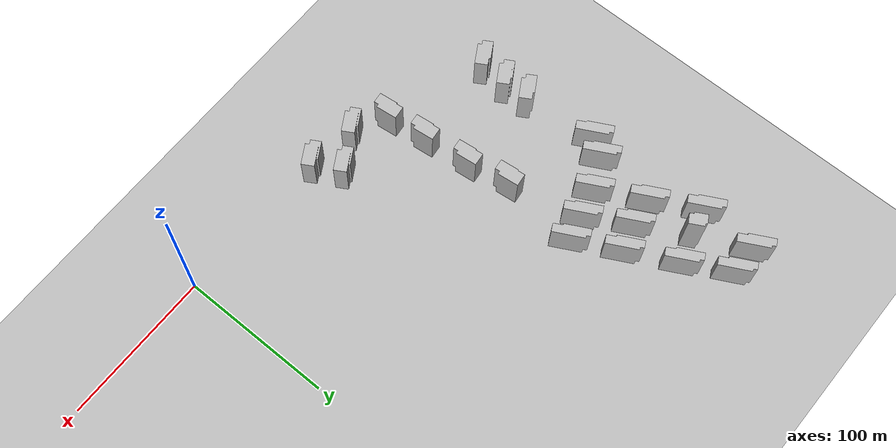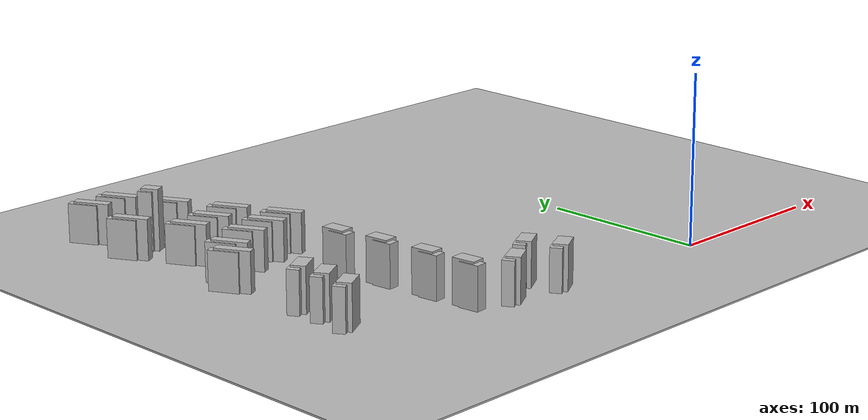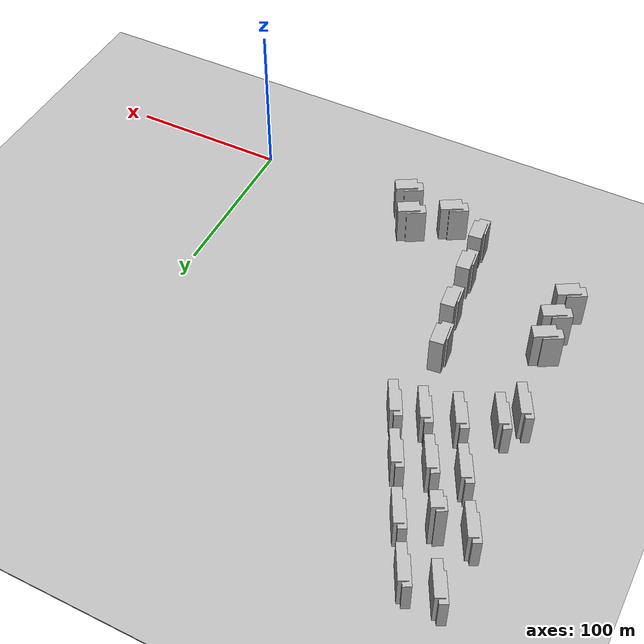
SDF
<sdf version="1.7">
 <world name="default">
  <model name="ground_plane">
   <static>1</static>
   <link name="link">
    <collision name="collision">
     <geometry><mesh><uri>model://ground_plane/scripts/plane.dae</uri><normal>0 0 1</normal></mesh></geometry>
     <surface><friction><ode><mu>100</mu><mu2>50</mu2></ode></friction></surface>
    </collision>
    <visual name="visual">
     <geometry><mesh><uri>model://ground_plane/scripts/plane.dae</uri><normal>0 0 1</normal></mesh></geometry>
     <material>
      <lighting>1</lighting>
      <script><uri>model://ground_plane/scripts/plane.jpg</uri><name>__default__</name></script>
      <shader type="pixel"/>
     </material>
    </visual>
   </link>
  </model>
  <model name="apartment2_1_clone_4">
   <static>1</static>
   <link name="link_0">
    <inertial>
     <mass>1</mass>
     <inertia>
      <ixx>0.166667</ixx>
      <ixy>0</ixy>
      <ixz>0</ixz>
      <iyy>0.166667</iyy>
      <iyz>0</iyz>
      <izz>0.166667</izz>
     </inertia>
    </inertial>
    <pose>1e-06 -0 0 0 -0 0</pose>
    <visual name="visual">
     <geometry>
      <mesh><uri>model://apartment1/scripts/apartment1.dae</uri><scale>0.35 0.14 0.22</scale></mesh>
     </geometry>
     <material>
      <lighting>1</lighting>
      <script><uri>model://apartment1/scripts/apartment1.jpg</uri><name>__default__</name></script>
      <shader type="pixel"/>
     </material>
    </visual>
    <collision name="collision">
     <geometry>
      <mesh><uri>model://apartment1/scripts/apartment1.dae</uri><scale>0.35 0.14 0.22</scale></mesh>
     </geometry>
     <surface>
      <friction>
       <ode><mu>1</mu><mu2>1</mu2><fdir1>0 0 0</fdir1><slip1>0</slip1><slip2>0</slip2></ode>
       <torsional>
        <coefficient>1</coefficient>
        <patch_radius>0</patch_radius>
        <surface_radius>0</surface_radius>
        <use_patch_radius>1</use_patch_radius>
        <ode><slip>0</slip></ode>
       </torsional>
      </friction>
      <bounce><restitution_coefficient>0</restitution_coefficient><threshold>1e+06</threshold></bounce>
      <contact>
       <collide_without_contact>0</collide_without_contact>
       <collide_without_contact_bitmask>1</collide_without_contact_bitmask>
       <collide_bitmask>1</collide_bitmask>
       <ode>
        <soft_cfm>0</soft_cfm>
        <soft_erp>0.2</soft_erp>
        <kp>1e+13</kp>
        <kd>1</kd>
        <max_vel>0.01</max_vel>
        <min_depth>0</min_depth>
       </ode>
       <bullet>
        <split_impulse>1</split_impulse>
        <split_impulse_penetration_threshold>-0.01</split_impulse_penetration_threshold>
        <soft_cfm>0</soft_cfm>
        <soft_erp>0.2</soft_erp>
        <kp>1e+13</kp>
        <kd>1</kd>
       </bullet>
      </contact>
     </surface>
    </collision>
   </link>
   <static>0</static>
   <pose>-223.775 43.3707 0 0 -0 0.527898</pose>
  </model>
  <model name="apartment2_1_clone_5">
   <static>1</static>
   <link name="link_0">
    <inertial>
     <mass>1</mass>
     <inertia>
      <ixx>0.166667</ixx>
      <ixy>0</ixy>
      <ixz>0</ixz>
      <iyy>0.166667</iyy>
      <iyz>0</iyz>
      <izz>0.166667</izz>
     </inertia>
    </inertial>
    <pose>1e-06 -0 0 0 -0 0</pose>
    <visual name="visual">
     <geometry>
      <mesh><uri>model://apartment1/scripts/apartment1.dae</uri><scale>0.35 0.14 0.22</scale></mesh>
     </geometry>
     <material>
      <lighting>1</lighting>
      <script><uri>model://apartment1/scripts/apartment1.jpg</uri><name>__default__</name></script>
      <shader type="pixel"/>
     </material>
    </visual>
    <collision name="collision">
     <geometry>
      <mesh><uri>model://apartment1/scripts/apartment1.dae</uri><scale>0.35 0.14 0.22</scale></mesh>
     </geometry>
     <surface>
      <friction>
       <ode><mu>1</mu><mu2>1</mu2><fdir1>0 0 0</fdir1><slip1>0</slip1><slip2>0</slip2></ode>
       <torsional>
        <coefficient>1</coefficient>
        <patch_radius>0</patch_radius>
        <surface_radius>0</surface_radius>
        <use_patch_radius>1</use_patch_radius>
        <ode><slip>0</slip></ode>
       </torsional>
      </friction>
      <bounce><restitution_coefficient>0</restitution_coefficient><threshold>1e+06</threshold></bounce>
      <contact>
       <collide_without_contact>0</collide_without_contact>
       <collide_without_contact_bitmask>1</collide_without_contact_bitmask>
       <collide_bitmask>1</collide_bitmask>
       <ode>
        <soft_cfm>0</soft_cfm>
        <soft_erp>0.2</soft_erp>
        <kp>1e+13</kp>
        <kd>1</kd>
        <max_vel>0.01</max_vel>
        <min_depth>0</min_depth>
       </ode>
       <bullet>
        <split_impulse>1</split_impulse>
        <split_impulse_penetration_threshold>-0.01</split_impulse_penetration_threshold>
        <soft_cfm>0</soft_cfm>
        <soft_erp>0.2</soft_erp>
        <kp>1e+13</kp>
        <kd>1</kd>
       </bullet>
      </contact>
     </surface>
    </collision>
   </link>
   <static>0</static>
   <pose>-221.711 62.3504 0 0 -0 0.527898</pose>
  </model>
  <model name="apartment2_1_clone_6">
   <static>1</static>
   <link name="link_0">
    <inertial>
     <mass>1</mass>
     <inertia>
      <ixx>0.166667</ixx>
      <ixy>0</ixy>
      <ixz>0</ixz>
      <iyy>0.166667</iyy>
      <iyz>0</iyz>
      <izz>0.166667</izz>
     </inertia>
    </inertial>
    <pose>1e-06 -0 0 0 -0 0</pose>
    <visual name="visual">
     <geometry>
      <mesh><uri>model://apartment1/scripts/apartment1.dae</uri><scale>0.35 0.14 0.22</scale></mesh>
     </geometry>
     <material>
      <lighting>1</lighting>
      <script><uri>model://apartment1/scripts/apartment1.jpg</uri><name>__default__</name></script>
      <shader type="pixel"/>
     </material>
    </visual>
    <collision name="collision">
     <geometry>
      <mesh><uri>model://apartment1/scripts/apartment1.dae</uri><scale>0.35 0.14 0.22</scale></mesh>
     </geometry>
     <surface>
      <friction>
       <ode><mu>1</mu><mu2>1</mu2><fdir1>0 0 0</fdir1><slip1>0</slip1><slip2>0</slip2></ode>
       <torsional>
        <coefficient>1</coefficient>
        <patch_radius>0</patch_radius>
        <surface_radius>0</surface_radius>
        <use_patch_radius>1</use_patch_radius>
        <ode><slip>0</slip></ode>
       </torsional>
      </friction>
      <bounce><restitution_coefficient>0</restitution_coefficient><threshold>1e+06</threshold></bounce>
      <contact>
       <collide_without_contact>0</collide_without_contact>
       <collide_without_contact_bitmask>1</collide_without_contact_bitmask>
       <collide_bitmask>1</collide_bitmask>
       <ode>
        <soft_cfm>0</soft_cfm>
        <soft_erp>0.2</soft_erp>
        <kp>1e+13</kp>
        <kd>1</kd>
        <max_vel>0.01</max_vel>
        <min_depth>0</min_depth>
       </ode>
       <bullet>
        <split_impulse>1</split_impulse>
        <split_impulse_penetration_threshold>-0.01</split_impulse_penetration_threshold>
        <soft_cfm>0</soft_cfm>
        <soft_erp>0.2</soft_erp>
        <kp>1e+13</kp>
        <kd>1</kd>
       </bullet>
      </contact>
     </surface>
    </collision>
   </link>
   <static>0</static>
   <pose>-222.402 79.3723 0 0 -0 0.527898</pose>
  </model>
  <model name="apartment2_1_clone_21">
   <static>1</static>
   <link name="link_0">
    <inertial>
     <mass>1</mass>
     <inertia>
      <ixx>0.166667</ixx>
      <ixy>0</ixy>
      <ixz>0</ixz>
      <iyy>0.166667</iyy>
      <iyz>0</iyz>
      <izz>0.166667</izz>
     </inertia>
    </inertial>
    <pose>1e-06 -0 0 0 -0 0</pose>
    <visual name="visual">
     <geometry>
      <mesh><uri>model://apartment1/scripts/apartment1.dae</uri><scale>0.35 0.14 0.22</scale></mesh>
     </geometry>
     <material>
      <lighting>1</lighting>
      <script><uri>model://apartment1/scripts/apartment1.jpg</uri><name>__default__</name></script>
      <shader type="pixel"/>
     </material>
    </visual>
    <collision name="collision">
     <geometry>
      <mesh><uri>model://apartment1/scripts/apartment1.dae</uri><scale>0.35 0.14 0.22</scale></mesh>
     </geometry>
     <surface>
      <friction>
       <ode><mu>1</mu><mu2>1</mu2><fdir1>0 0 0</fdir1><slip1>0</slip1><slip2>0</slip2></ode>
       <torsional>
        <coefficient>1</coefficient>
        <patch_radius>0</patch_radius>
        <surface_radius>0</surface_radius>
        <use_patch_radius>1</use_patch_radius>
        <ode><slip>0</slip></ode>
       </torsional>
      </friction>
      <bounce><restitution_coefficient>0</restitution_coefficient><threshold>1e+06</threshold></bounce>
      <contact>
       <collide_without_contact>0</collide_without_contact>
       <collide_without_contact_bitmask>1</collide_without_contact_bitmask>
       <collide_bitmask>1</collide_bitmask>
       <ode>
        <soft_cfm>0</soft_cfm>
        <soft_erp>0.2</soft_erp>
        <kp>1e+13</kp>
        <kd>1</kd>
        <max_vel>0.01</max_vel>
        <min_depth>0</min_depth>
       </ode>
       <bullet>
        <split_impulse>1</split_impulse>
        <split_impulse_penetration_threshold>-0.01</split_impulse_penetration_threshold>
        <soft_cfm>0</soft_cfm>
        <soft_erp>0.2</soft_erp>
        <kp>1e+13</kp>
        <kd>1</kd>
       </bullet>
      </contact>
     </surface>
    </collision>
   </link>
   <static>0</static>
   <pose>-102.425 5.46935 0 0 -0 0.527898</pose>
  </model>
  <model name="apartment2_1_clone_23">
   <static>1</static>
   <link name="link_0">
    <inertial>
     <mass>1</mass>
     <inertia>
      <ixx>0.166667</ixx>
      <ixy>0</ixy>
      <ixz>0</ixz>
      <iyy>0.166667</iyy>
      <iyz>0</iyz>
      <izz>0.166667</izz>
     </inertia>
    </inertial>
    <pose>1e-06 -0 0 0 -0 0</pose>
    <visual name="visual">
     <geometry>
      <mesh><uri>model://apartment1/scripts/apartment1.dae</uri><scale>0.35 0.14 0.22</scale></mesh>
     </geometry>
     <material>
      <lighting>1</lighting>
      <script><uri>model://apartment1/scripts/apartment1.jpg</uri><name>__default__</name></script>
      <shader type="pixel"/>
     </material>
    </visual>
    <collision name="collision">
     <geometry>
      <mesh><uri>model://apartment1/scripts/apartment1.dae</uri><scale>0.35 0.14 0.22</scale></mesh>
     </geometry>
     <surface>
      <friction>
       <ode><mu>1</mu><mu2>1</mu2><fdir1>0 0 0</fdir1><slip1>0</slip1><slip2>0</slip2></ode>
       <torsional>
        <coefficient>1</coefficient>
        <patch_radius>0</patch_radius>
        <surface_radius>0</surface_radius>
        <use_patch_radius>1</use_patch_radius>
        <ode><slip>0</slip></ode>
       </torsional>
      </friction>
      <bounce><restitution_coefficient>0</restitution_coefficient><threshold>1e+06</threshold></bounce>
      <contact>
       <collide_without_contact>0</collide_without_contact>
       <collide_without_contact_bitmask>1</collide_without_contact_bitmask>
       <collide_bitmask>1</collide_bitmask>
       <ode>
        <soft_cfm>0</soft_cfm>
        <soft_erp>0.2</soft_erp>
        <kp>1e+13</kp>
        <kd>1</kd>
        <max_vel>0.01</max_vel>
        <min_depth>0</min_depth>
       </ode>
       <bullet>
        <split_impulse>1</split_impulse>
        <split_impulse_penetration_threshold>-0.01</split_impulse_penetration_threshold>
        <soft_cfm>0</soft_cfm>
        <soft_erp>0.2</soft_erp>
        <kp>1e+13</kp>
        <kd>1</kd>
       </bullet>
      </contact>
     </surface>
    </collision>
   </link>
   <static>0</static>
   <pose>-134.997 9.67995 0 0 -0 0.527898</pose>
  </model>
  <model name="apartment2_1_clone_24">
   <static>1</static>
   <link name="link_0">
    <inertial>
     <mass>1</mass>
     <inertia>
      <ixx>0.166667</ixx>
      <ixy>0</ixy>
      <ixz>0</ixz>
      <iyy>0.166667</iyy>
      <iyz>0</iyz>
      <izz>0.166667</izz>
     </inertia>
    </inertial>
    <pose>1e-06 -0 0 0 -0 0</pose>
    <visual name="visual">
     <geometry>
      <mesh><uri>model://apartment1/scripts/apartment1.dae</uri><scale>0.35 0.14 0.22</scale></mesh>
     </geometry>
     <material>
      <lighting>1</lighting>
      <script><uri>model://apartment1/scripts/apartment1.jpg</uri><name>__default__</name></script>
      <shader type="pixel"/>
     </material>
    </visual>
    <collision name="collision">
     <geometry>
      <mesh><uri>model://apartment1/scripts/apartment1.dae</uri><scale>0.35 0.14 0.22</scale></mesh>
     </geometry>
     <surface>
      <friction>
       <ode><mu>1</mu><mu2>1</mu2><fdir1>0 0 0</fdir1><slip1>0</slip1><slip2>0</slip2></ode>
       <torsional>
        <coefficient>1</coefficient>
        <patch_radius>0</patch_radius>
        <surface_radius>0</surface_radius>
        <use_patch_radius>1</use_patch_radius>
        <ode><slip>0</slip></ode>
       </torsional>
      </friction>
      <bounce><restitution_coefficient>0</restitution_coefficient><threshold>1e+06</threshold></bounce>
      <contact>
       <collide_without_contact>0</collide_without_contact>
       <collide_without_contact_bitmask>1</collide_without_contact_bitmask>
       <collide_bitmask>1</collide_bitmask>
       <ode>
        <soft_cfm>0</soft_cfm>
        <soft_erp>0.2</soft_erp>
        <kp>1e+13</kp>
        <kd>1</kd>
        <max_vel>0.01</max_vel>
        <min_depth>0</min_depth>
       </ode>
       <bullet>
        <split_impulse>1</split_impulse>
        <split_impulse_penetration_threshold>-0.01</split_impulse_penetration_threshold>
        <soft_cfm>0</soft_cfm>
        <soft_erp>0.2</soft_erp>
        <kp>1e+13</kp>
        <kd>1</kd>
       </bullet>
      </contact>
     </surface>
    </collision>
   </link>
   <static>0</static>
   <pose>-112.023 23.1556 0 0 -0 0.527898</pose>
  </model>
  <model name="apartment2_1_clone_25">
   <static>1</static>
   <link name="link_0">
    <inertial>
     <mass>1</mass>
     <inertia>
      <ixx>0.166667</ixx>
      <ixy>0</ixy>
      <ixz>0</ixz>
      <iyy>0.166667</iyy>
      <iyz>0</iyz>
      <izz>0.166667</izz>
     </inertia>
    </inertial>
    <pose>1e-06 -0 0 0 -0 0</pose>
    <visual name="visual">
     <geometry>
      <mesh><uri>model://apartment1/scripts/apartment1.dae</uri><scale>0.35 0.14 0.22</scale></mesh>
     </geometry>
     <material>
      <lighting>1</lighting>
      <script><uri>model://apartment1/scripts/apartment1.jpg</uri><name>__default__</name></script>
      <shader type="pixel"/>
     </material>
    </visual>
    <collision name="collision">
     <geometry>
      <mesh><uri>model://apartment1/scripts/apartment1.dae</uri><scale>0.35 0.14 0.22</scale></mesh>
     </geometry>
     <surface>
      <friction>
       <ode><mu>1</mu><mu2>1</mu2><fdir1>0 0 0</fdir1><slip1>0</slip1><slip2>0</slip2></ode>
       <torsional>
        <coefficient>1</coefficient>
        <patch_radius>0</patch_radius>
        <surface_radius>0</surface_radius>
        <use_patch_radius>1</use_patch_radius>
        <ode><slip>0</slip></ode>
       </torsional>
      </friction>
      <bounce><restitution_coefficient>0</restitution_coefficient><threshold>1e+06</threshold></bounce>
      <contact>
       <collide_without_contact>0</collide_without_contact>
       <collide_without_contact_bitmask>1</collide_without_contact_bitmask>
       <collide_bitmask>1</collide_bitmask>
       <ode>
        <soft_cfm>0</soft_cfm>
        <soft_erp>0.2</soft_erp>
        <kp>1e+13</kp>
        <kd>1</kd>
        <max_vel>0.01</max_vel>
        <min_depth>0</min_depth>
       </ode>
       <bullet>
        <split_impulse>1</split_impulse>
        <split_impulse_penetration_threshold>-0.01</split_impulse_penetration_threshold>
        <soft_cfm>0</soft_cfm>
        <soft_erp>0.2</soft_erp>
        <kp>1e+13</kp>
        <kd>1</kd>
       </bullet>
      </contact>
     </surface>
    </collision>
   </link>
   <static>0</static>
   <pose>-158.226 22.2458 0 0 -0 1.68248</pose>
  </model>
  <model name="apartment2_1_clone_25_clone">
   <static>1</static>
   <link name="link_0">
    <inertial>
     <mass>1</mass>
     <inertia>
      <ixx>0.166667</ixx>
      <ixy>0</ixy>
      <ixz>0</ixz>
      <iyy>0.166667</iyy>
      <iyz>0</iyz>
      <izz>0.166667</izz>
     </inertia>
    </inertial>
    <pose>1e-06 -0 0 0 -0 0</pose>
    <visual name="visual">
     <geometry>
      <mesh><uri>model://apartment1/scripts/apartment1.dae</uri><scale>0.35 0.14 0.22</scale></mesh>
     </geometry>
     <material>
      <lighting>1</lighting>
      <script><uri>model://apartment1/scripts/apartment1.jpg</uri><name>__default__</name></script>
      <shader type="pixel"/>
     </material>
    </visual>
    <collision name="collision">
     <geometry>
      <mesh><uri>model://apartment1/scripts/apartment1.dae</uri><scale>0.35 0.14 0.22</scale></mesh>
     </geometry>
     <surface>
      <friction>
       <ode><mu>1</mu><mu2>1</mu2><fdir1>0 0 0</fdir1><slip1>0</slip1><slip2>0</slip2></ode>
       <torsional>
        <coefficient>1</coefficient>
        <patch_radius>0</patch_radius>
        <surface_radius>0</surface_radius>
        <use_patch_radius>1</use_patch_radius>
        <ode><slip>0</slip></ode>
       </torsional>
      </friction>
      <bounce><restitution_coefficient>0</restitution_coefficient><threshold>1e+06</threshold></bounce>
      <contact>
       <collide_without_contact>0</collide_without_contact>
       <collide_without_contact_bitmask>1</collide_without_contact_bitmask>
       <collide_bitmask>1</collide_bitmask>
       <ode>
        <soft_cfm>0</soft_cfm>
        <soft_erp>0.2</soft_erp>
        <kp>1e+13</kp>
        <kd>1</kd>
        <max_vel>0.01</max_vel>
        <min_depth>0</min_depth>
       </ode>
       <bullet>
        <split_impulse>1</split_impulse>
        <split_impulse_penetration_threshold>-0.01</split_impulse_penetration_threshold>
        <soft_cfm>0</soft_cfm>
        <soft_erp>0.2</soft_erp>
        <kp>1e+13</kp>
        <kd>1</kd>
       </bullet>
      </contact>
     </surface>
    </collision>
   </link>
   <static>0</static>
   <pose>-161.431 49 0 0 -0 1.68248</pose>
  </model>
  <model name="apartment2_1_clone_25_clone_0">
   <static>1</static>
   <link name="link_0">
    <inertial>
     <mass>1</mass>
     <inertia>
      <ixx>0.166667</ixx>
      <ixy>0</ixy>
      <ixz>0</ixz>
      <iyy>0.166667</iyy>
      <iyz>0</iyz>
      <izz>0.166667</izz>
     </inertia>
    </inertial>
    <pose>1e-06 -0 0 0 -0 0</pose>
    <visual name="visual">
     <geometry>
      <mesh><uri>model://apartment1/scripts/apartment1.dae</uri><scale>0.35 0.14 0.22</scale></mesh>
     </geometry>
     <material>
      <lighting>1</lighting>
      <script><uri>model://apartment1/scripts/apartment1.jpg</uri><name>__default__</name></script>
      <shader type="pixel"/>
     </material>
    </visual>
    <collision name="collision">
     <geometry>
      <mesh><uri>model://apartment1/scripts/apartment1.dae</uri><scale>0.35 0.14 0.22</scale></mesh>
     </geometry>
     <surface>
      <friction>
       <ode><mu>1</mu><mu2>1</mu2><fdir1>0 0 0</fdir1><slip1>0</slip1><slip2>0</slip2></ode>
       <torsional>
        <coefficient>1</coefficient>
        <patch_radius>0</patch_radius>
        <surface_radius>0</surface_radius>
        <use_patch_radius>1</use_patch_radius>
        <ode><slip>0</slip></ode>
       </torsional>
      </friction>
      <bounce><restitution_coefficient>0</restitution_coefficient><threshold>1e+06</threshold></bounce>
      <contact>
       <collide_without_contact>0</collide_without_contact>
       <collide_without_contact_bitmask>1</collide_without_contact_bitmask>
       <collide_bitmask>1</collide_bitmask>
       <ode>
        <soft_cfm>0</soft_cfm>
        <soft_erp>0.2</soft_erp>
        <kp>1e+13</kp>
        <kd>1</kd>
        <max_vel>0.01</max_vel>
        <min_depth>0</min_depth>
       </ode>
       <bullet>
        <split_impulse>1</split_impulse>
        <split_impulse_penetration_threshold>-0.01</split_impulse_penetration_threshold>
        <soft_cfm>0</soft_cfm>
        <soft_erp>0.2</soft_erp>
        <kp>1e+13</kp>
        <kd>1</kd>
       </bullet>
      </contact>
     </surface>
    </collision>
   </link>
   <static>0</static>
   <pose>-165 80 0 0 -0 1.68248</pose>
  </model>
  <model name="apartment2_1_clone_25_clone_1">
   <static>1</static>
   <link name="link_0">
    <inertial>
     <mass>1</mass>
     <inertia>
      <ixx>0.166667</ixx>
      <ixy>0</ixy>
      <ixz>0</ixz>
      <iyy>0.166667</iyy>
      <iyz>0</iyz>
      <izz>0.166667</izz>
     </inertia>
    </inertial>
    <pose>1e-06 -0 0 0 -0 0</pose>
    <visual name="visual">
     <geometry>
      <mesh><uri>model://apartment1/scripts/apartment1.dae</uri><scale>0.35 0.14 0.22</scale></mesh>
     </geometry>
     <material>
      <lighting>1</lighting>
      <script><uri>model://apartment1/scripts/apartment1.jpg</uri><name>__default__</name></script>
      <shader type="pixel"/>
     </material>
    </visual>
    <collision name="collision">
     <geometry>
      <mesh><uri>model://apartment1/scripts/apartment1.dae</uri><scale>0.35 0.14 0.22</scale></mesh>
     </geometry>
     <surface>
      <friction>
       <ode><mu>1</mu><mu2>1</mu2><fdir1>0 0 0</fdir1><slip1>0</slip1><slip2>0</slip2></ode>
       <torsional>
        <coefficient>1</coefficient>
        <patch_radius>0</patch_radius>
        <surface_radius>0</surface_radius>
        <use_patch_radius>1</use_patch_radius>
        <ode><slip>0</slip></ode>
       </torsional>
      </friction>
      <bounce><restitution_coefficient>0</restitution_coefficient><threshold>1e+06</threshold></bounce>
      <contact>
       <collide_without_contact>0</collide_without_contact>
       <collide_without_contact_bitmask>1</collide_without_contact_bitmask>
       <collide_bitmask>1</collide_bitmask>
       <ode>
        <soft_cfm>0</soft_cfm>
        <soft_erp>0.2</soft_erp>
        <kp>1e+13</kp>
        <kd>1</kd>
        <max_vel>0.01</max_vel>
        <min_depth>0</min_depth>
       </ode>
       <bullet>
        <split_impulse>1</split_impulse>
        <split_impulse_penetration_threshold>-0.01</split_impulse_penetration_threshold>
        <soft_cfm>0</soft_cfm>
        <soft_erp>0.2</soft_erp>
        <kp>1e+13</kp>
        <kd>1</kd>
       </bullet>
      </contact>
     </surface>
    </collision>
   </link>
   <static>0</static>
   <pose>-170.449 108.13 0 0 -0 1.68248</pose>
  </model>
  <model name="apartment3">
   <static>1</static>
   <link name="link_0">
    <inertial>
     <mass>1</mass>
     <inertia>
      <ixx>0.166667</ixx>
      <ixy>0</ixy>
      <ixz>0</ixz>
      <iyy>0.166667</iyy>
      <iyz>0</iyz>
      <izz>0.166667</izz>
     </inertia>
    </inertial>
    <pose>1e-06 -0 0 0 -0 0</pose>
    <visual name="visual">
     <geometry>
      <mesh><uri>model://apartment1/scripts/apartment1.dae</uri><scale>0.14 0.35 0.2</scale></mesh>
     </geometry>
     <material>
      <lighting>1</lighting>
      <script><uri>model://apartment1/scripts/apartment1.jpg</uri><name>__default__</name></script>
      <shader type="pixel"/>
     </material>
    </visual>
    <collision name="collision">
     <geometry>
      <mesh><uri>model://apartment1/scripts/apartment1.dae</uri><scale>0.14 0.35 0.2</scale></mesh>
     </geometry>
     <surface>
      <friction>
       <ode><mu>1</mu><mu2>1</mu2><fdir1>0 0 0</fdir1><slip1>0</slip1><slip2>0</slip2></ode>
       <torsional>
        <coefficient>1</coefficient>
        <patch_radius>0</patch_radius>
        <surface_radius>0</surface_radius>
        <use_patch_radius>1</use_patch_radius>
        <ode><slip>0</slip></ode>
       </torsional>
      </friction>
      <bounce><restitution_coefficient>0</restitution_coefficient><threshold>1e+06</threshold></bounce>
      <contact>
       <collide_without_contact>0</collide_without_contact>
       <collide_without_contact_bitmask>1</collide_without_contact_bitmask>
       <collide_bitmask>1</collide_bitmask>
       <ode>
        <soft_cfm>0</soft_cfm>
        <soft_erp>0.2</soft_erp>
        <kp>1e+13</kp>
        <kd>1</kd>
        <max_vel>0.01</max_vel>
        <min_depth>0</min_depth>
       </ode>
       <bullet>
        <split_impulse>1</split_impulse>
        <split_impulse_penetration_threshold>-0.01</split_impulse_penetration_threshold>
        <soft_cfm>0</soft_cfm>
        <soft_erp>0.2</soft_erp>
        <kp>1e+13</kp>
        <kd>1</kd>
       </bullet>
      </contact>
     </surface>
    </collision>
   </link>
   <static>0</static>
   <pose>-164.569 156.919 0 0 -0 0.481312</pose>
  </model>
  <model name="apartment3_clone">
   <static>1</static>
   <link name="link_0">
    <inertial>
     <mass>1</mass>
     <inertia>
      <ixx>0.166667</ixx>
      <ixy>0</ixy>
      <ixz>0</ixz>
      <iyy>0.166667</iyy>
      <iyz>0</iyz>
      <izz>0.166667</izz>
     </inertia>
    </inertial>
    <pose>1e-06 -0 0 0 -0 0</pose>
    <visual name="visual">
     <geometry>
      <mesh><uri>model://apartment1/scripts/apartment1.dae</uri><scale>0.14 0.35 0.2</scale></mesh>
     </geometry>
     <material>
      <lighting>1</lighting>
      <script><uri>model://apartment1/scripts/apartment1.jpg</uri><name>__default__</name></script>
      <shader type="pixel"/>
     </material>
    </visual>
    <collision name="collision">
     <geometry>
      <mesh><uri>model://apartment1/scripts/apartment1.dae</uri><scale>0.14 0.35 0.2</scale></mesh>
     </geometry>
     <surface>
      <friction>
       <ode><mu>1</mu><mu2>1</mu2><fdir1>0 0 0</fdir1><slip1>0</slip1><slip2>0</slip2></ode>
       <torsional>
        <coefficient>1</coefficient>
        <patch_radius>0</patch_radius>
        <surface_radius>0</surface_radius>
        <use_patch_radius>1</use_patch_radius>
        <ode><slip>0</slip></ode>
       </torsional>
      </friction>
      <bounce><restitution_coefficient>0</restitution_coefficient><threshold>1e+06</threshold></bounce>
      <contact>
       <collide_without_contact>0</collide_without_contact>
       <collide_without_contact_bitmask>1</collide_without_contact_bitmask>
       <collide_bitmask>1</collide_bitmask>
       <ode>
        <soft_cfm>0</soft_cfm>
        <soft_erp>0.2</soft_erp>
        <kp>1e+13</kp>
        <kd>1</kd>
        <max_vel>0.01</max_vel>
        <min_depth>0</min_depth>
       </ode>
       <bullet>
        <split_impulse>1</split_impulse>
        <split_impulse_penetration_threshold>-0.01</split_impulse_penetration_threshold>
        <soft_cfm>0</soft_cfm>
        <soft_erp>0.2</soft_erp>
        <kp>1e+13</kp>
        <kd>1</kd>
       </bullet>
      </contact>
     </surface>
    </collision>
   </link>
   <static>0</static>
   <pose>-178.982 186.017 0 0 -0 0.481312</pose>
  </model>
  <model name="apartment3_clone_0">
   <static>1</static>
   <link name="link_0">
    <inertial>
     <mass>1</mass>
     <inertia>
      <ixx>0.166667</ixx>
      <ixy>0</ixy>
      <ixz>0</ixz>
      <iyy>0.166667</iyy>
      <iyz>0</iyz>
      <izz>0.166667</izz>
     </inertia>
    </inertial>
    <pose>1e-06 -0 0 0 -0 0</pose>
    <visual name="visual">
     <geometry>
      <mesh><uri>model://apartment1/scripts/apartment1.dae</uri><scale>0.14 0.35 0.2</scale></mesh>
     </geometry>
     <material>
      <lighting>1</lighting>
      <script><uri>model://apartment1/scripts/apartment1.jpg</uri><name>__default__</name></script>
      <shader type="pixel"/>
     </material>
    </visual>
    <collision name="collision">
     <geometry>
      <mesh><uri>model://apartment1/scripts/apartment1.dae</uri><scale>0.14 0.35 0.2</scale></mesh>
     </geometry>
     <surface>
      <friction>
       <ode><mu>1</mu><mu2>1</mu2><fdir1>0 0 0</fdir1><slip1>0</slip1><slip2>0</slip2></ode>
       <torsional>
        <coefficient>1</coefficient>
        <patch_radius>0</patch_radius>
        <surface_radius>0</surface_radius>
        <use_patch_radius>1</use_patch_radius>
        <ode><slip>0</slip></ode>
       </torsional>
      </friction>
      <bounce><restitution_coefficient>0</restitution_coefficient><threshold>1e+06</threshold></bounce>
      <contact>
       <collide_without_contact>0</collide_without_contact>
       <collide_without_contact_bitmask>1</collide_without_contact_bitmask>
       <collide_bitmask>1</collide_bitmask>
       <ode>
        <soft_cfm>0</soft_cfm>
        <soft_erp>0.2</soft_erp>
        <kp>1e+13</kp>
        <kd>1</kd>
        <max_vel>0.01</max_vel>
        <min_depth>0</min_depth>
       </ode>
       <bullet>
        <split_impulse>1</split_impulse>
        <split_impulse_penetration_threshold>-0.01</split_impulse_penetration_threshold>
        <soft_cfm>0</soft_cfm>
        <soft_erp>0.2</soft_erp>
        <kp>1e+13</kp>
        <kd>1</kd>
       </bullet>
      </contact>
     </surface>
    </collision>
   </link>
   <static>0</static>
   <pose>-195.248 218.051 0 0 -0 0.481312</pose>
  </model>
  <model name="apartment3_clone_1">
   <static>1</static>
   <link name="link_0">
    <inertial>
     <mass>1</mass>
     <inertia>
      <ixx>0.166667</ixx>
      <ixy>0</ixy>
      <ixz>0</ixz>
      <iyy>0.166667</iyy>
      <iyz>0</iyz>
      <izz>0.166667</izz>
     </inertia>
    </inertial>
    <pose>1e-06 -0 0 0 -0 0</pose>
    <visual name="visual">
     <geometry>
      <mesh><uri>model://apartment1/scripts/apartment1.dae</uri><scale>0.14 0.35 0.2</scale></mesh>
     </geometry>
     <material>
      <lighting>1</lighting>
      <script><uri>model://apartment1/scripts/apartment1.jpg</uri><name>__default__</name></script>
      <shader type="pixel"/>
     </material>
    </visual>
    <collision name="collision">
     <geometry>
      <mesh><uri>model://apartment1/scripts/apartment1.dae</uri><scale>0.14 0.35 0.2</scale></mesh>
     </geometry>
     <surface>
      <friction>
       <ode><mu>1</mu><mu2>1</mu2><fdir1>0 0 0</fdir1><slip1>0</slip1><slip2>0</slip2></ode>
       <torsional>
        <coefficient>1</coefficient>
        <patch_radius>0</patch_radius>
        <surface_radius>0</surface_radius>
        <use_patch_radius>1</use_patch_radius>
        <ode><slip>0</slip></ode>
       </torsional>
      </friction>
      <bounce><restitution_coefficient>0</restitution_coefficient><threshold>1e+06</threshold></bounce>
      <contact>
       <collide_without_contact>0</collide_without_contact>
       <collide_without_contact_bitmask>1</collide_without_contact_bitmask>
       <collide_bitmask>1</collide_bitmask>
       <ode>
        <soft_cfm>0</soft_cfm>
        <soft_erp>0.2</soft_erp>
        <kp>1e+13</kp>
        <kd>1</kd>
        <max_vel>0.01</max_vel>
        <min_depth>0</min_depth>
       </ode>
       <bullet>
        <split_impulse>1</split_impulse>
        <split_impulse_penetration_threshold>-0.01</split_impulse_penetration_threshold>
        <soft_cfm>0</soft_cfm>
        <soft_erp>0.2</soft_erp>
        <kp>1e+13</kp>
        <kd>1</kd>
       </bullet>
      </contact>
     </surface>
    </collision>
   </link>
   <static>0</static>
   <pose>-210.536 245.674 0 0 -0 0.481312</pose>
  </model>
  <model name="apartment3_clone_2">
   <static>1</static>
   <link name="link_0">
    <inertial>
     <mass>1</mass>
     <inertia>
      <ixx>0.166667</ixx>
      <ixy>0</ixy>
      <ixz>0</ixz>
      <iyy>0.166667</iyy>
      <iyz>0</iyz>
      <izz>0.166667</izz>
     </inertia>
    </inertial>
    <pose>1e-06 -0 0 0 -0 0</pose>
    <visual name="visual">
     <geometry>
      <mesh><uri>model://apartment1/scripts/apartment1.dae</uri><scale>0.14 0.35 0.2</scale></mesh>
     </geometry>
     <material>
      <lighting>1</lighting>
      <script><uri>model://apartment1/scripts/apartment1.jpg</uri><name>__default__</name></script>
      <shader type="pixel"/>
     </material>
    </visual>
    <collision name="collision">
     <geometry>
      <mesh><uri>model://apartment1/scripts/apartment1.dae</uri><scale>0.14 0.35 0.2</scale></mesh>
     </geometry>
     <surface>
      <friction>
       <ode><mu>1</mu><mu2>1</mu2><fdir1>0 0 0</fdir1><slip1>0</slip1><slip2>0</slip2></ode>
       <torsional>
        <coefficient>1</coefficient>
        <patch_radius>0</patch_radius>
        <surface_radius>0</surface_radius>
        <use_patch_radius>1</use_patch_radius>
        <ode><slip>0</slip></ode>
       </torsional>
      </friction>
      <bounce><restitution_coefficient>0</restitution_coefficient><threshold>1e+06</threshold></bounce>
      <contact>
       <collide_without_contact>0</collide_without_contact>
       <collide_without_contact_bitmask>1</collide_without_contact_bitmask>
       <collide_bitmask>1</collide_bitmask>
       <ode>
        <soft_cfm>0</soft_cfm>
        <soft_erp>0.2</soft_erp>
        <kp>1e+13</kp>
        <kd>1</kd>
        <max_vel>0.01</max_vel>
        <min_depth>0</min_depth>
       </ode>
       <bullet>
        <split_impulse>1</split_impulse>
        <split_impulse_penetration_threshold>-0.01</split_impulse_penetration_threshold>
        <soft_cfm>0</soft_cfm>
        <soft_erp>0.2</soft_erp>
        <kp>1e+13</kp>
        <kd>1</kd>
       </bullet>
      </contact>
     </surface>
    </collision>
   </link>
   <static>0</static>
   <pose>-181.013 153.39 0 0 -0 0.481312</pose>
  </model>
  <model name="apartment3_clone_3">
   <static>1</static>
   <link name="link_0">
    <inertial>
     <mass>1</mass>
     <inertia>
      <ixx>0.166667</ixx>
      <ixy>0</ixy>
      <ixz>0</ixz>
      <iyy>0.166667</iyy>
      <iyz>0</iyz>
      <izz>0.166667</izz>
     </inertia>
    </inertial>
    <pose>1e-06 -0 0 0 -0 0</pose>
    <visual name="visual">
     <geometry>
      <mesh><uri>model://apartment1/scripts/apartment1.dae</uri><scale>0.14 0.35 0.2</scale></mesh>
     </geometry>
     <material>
      <lighting>1</lighting>
      <script><uri>model://apartment1/scripts/apartment1.jpg</uri><name>__default__</name></script>
      <shader type="pixel"/>
     </material>
    </visual>
    <collision name="collision">
     <geometry>
      <mesh><uri>model://apartment1/scripts/apartment1.dae</uri><scale>0.14 0.35 0.2</scale></mesh>
     </geometry>
     <surface>
      <friction>
       <ode><mu>1</mu><mu2>1</mu2><fdir1>0 0 0</fdir1><slip1>0</slip1><slip2>0</slip2></ode>
       <torsional>
        <coefficient>1</coefficient>
        <patch_radius>0</patch_radius>
        <surface_radius>0</surface_radius>
        <use_patch_radius>1</use_patch_radius>
        <ode><slip>0</slip></ode>
       </torsional>
      </friction>
      <bounce><restitution_coefficient>0</restitution_coefficient><threshold>1e+06</threshold></bounce>
      <contact>
       <collide_without_contact>0</collide_without_contact>
       <collide_without_contact_bitmask>1</collide_without_contact_bitmask>
       <collide_bitmask>1</collide_bitmask>
       <ode>
        <soft_cfm>0</soft_cfm>
        <soft_erp>0.2</soft_erp>
        <kp>1e+13</kp>
        <kd>1</kd>
        <max_vel>0.01</max_vel>
        <min_depth>0</min_depth>
       </ode>
       <bullet>
        <split_impulse>1</split_impulse>
        <split_impulse_penetration_threshold>-0.01</split_impulse_penetration_threshold>
        <soft_cfm>0</soft_cfm>
        <soft_erp>0.2</soft_erp>
        <kp>1e+13</kp>
        <kd>1</kd>
       </bullet>
      </contact>
     </surface>
    </collision>
   </link>
   <static>0</static>
   <pose>-196.866 180.955 0 0 -0 0.481312</pose>
  </model>
  <model name="apartment3_clone_5">
   <static>1</static>
   <link name="link_0">
    <inertial>
     <mass>1</mass>
     <inertia>
      <ixx>0.166667</ixx>
      <ixy>0</ixy>
      <ixz>0</ixz>
      <iyy>0.166667</iyy>
      <iyz>0</iyz>
      <izz>0.166667</izz>
     </inertia>
    </inertial>
    <pose>1e-06 -0 0 0 -0 0</pose>
    <visual name="visual">
     <geometry>
      <mesh><uri>model://apartment1/scripts/apartment1.dae</uri><scale>0.14 0.35 0.2</scale></mesh>
     </geometry>
     <material>
      <lighting>1</lighting>
      <script><uri>model://apartment1/scripts/apartment1.jpg</uri><name>__default__</name></script>
      <shader type="pixel"/>
     </material>
    </visual>
    <collision name="collision">
     <geometry>
      <mesh><uri>model://apartment1/scripts/apartment1.dae</uri><scale>0.14 0.35 0.2</scale></mesh>
     </geometry>
     <surface>
      <friction>
       <ode><mu>1</mu><mu2>1</mu2><fdir1>0 0 0</fdir1><slip1>0</slip1><slip2>0</slip2></ode>
       <torsional>
        <coefficient>1</coefficient>
        <patch_radius>0</patch_radius>
        <surface_radius>0</surface_radius>
        <use_patch_radius>1</use_patch_radius>
        <ode><slip>0</slip></ode>
       </torsional>
      </friction>
      <bounce><restitution_coefficient>0</restitution_coefficient><threshold>1e+06</threshold></bounce>
      <contact>
       <collide_without_contact>0</collide_without_contact>
       <collide_without_contact_bitmask>1</collide_without_contact_bitmask>
       <collide_bitmask>1</collide_bitmask>
       <ode>
        <soft_cfm>0</soft_cfm>
        <soft_erp>0.2</soft_erp>
        <kp>1e+13</kp>
        <kd>1</kd>
        <max_vel>0.01</max_vel>
        <min_depth>0</min_depth>
       </ode>
       <bullet>
        <split_impulse>1</split_impulse>
        <split_impulse_penetration_threshold>-0.01</split_impulse_penetration_threshold>
        <soft_cfm>0</soft_cfm>
        <soft_erp>0.2</soft_erp>
        <kp>1e+13</kp>
        <kd>1</kd>
       </bullet>
      </contact>
     </surface>
    </collision>
   </link>
   <static>0</static>
   <pose>-229.941 245.912 0 0 -0 0.481312</pose>
  </model>
  <model name="apartment3_clone_6">
   <static>1</static>
   <link name="link_0">
    <inertial>
     <mass>1</mass>
     <inertia>
      <ixx>0.166667</ixx>
      <ixy>0</ixy>
      <ixz>0</ixz>
      <iyy>0.166667</iyy>
      <iyz>0</iyz>
      <izz>0.166667</izz>
     </inertia>
    </inertial>
    <pose>1e-06 -0 0 0 -0 0</pose>
    <visual name="visual">
     <geometry>
      <mesh><uri>model://apartment1/scripts/apartment1.dae</uri><scale>0.14 0.35 0.2</scale></mesh>
     </geometry>
     <material>
      <lighting>1</lighting>
      <script><uri>model://apartment1/scripts/apartment1.jpg</uri><name>__default__</name></script>
      <shader type="pixel"/>
     </material>
    </visual>
    <collision name="collision">
     <geometry>
      <mesh><uri>model://apartment1/scripts/apartment1.dae</uri><scale>0.14 0.35 0.2</scale></mesh>
     </geometry>
     <surface>
      <friction>
       <ode><mu>1</mu><mu2>1</mu2><fdir1>0 0 0</fdir1><slip1>0</slip1><slip2>0</slip2></ode>
       <torsional>
        <coefficient>1</coefficient>
        <patch_radius>0</patch_radius>
        <surface_radius>0</surface_radius>
        <use_patch_radius>1</use_patch_radius>
        <ode><slip>0</slip></ode>
       </torsional>
      </friction>
      <bounce><restitution_coefficient>0</restitution_coefficient><threshold>1e+06</threshold></bounce>
      <contact>
       <collide_without_contact>0</collide_without_contact>
       <collide_without_contact_bitmask>1</collide_without_contact_bitmask>
       <collide_bitmask>1</collide_bitmask>
       <ode>
        <soft_cfm>0</soft_cfm>
        <soft_erp>0.2</soft_erp>
        <kp>1e+13</kp>
        <kd>1</kd>
        <max_vel>0.01</max_vel>
        <min_depth>0</min_depth>
       </ode>
       <bullet>
        <split_impulse>1</split_impulse>
        <split_impulse_penetration_threshold>-0.01</split_impulse_penetration_threshold>
        <soft_cfm>0</soft_cfm>
        <soft_erp>0.2</soft_erp>
        <kp>1e+13</kp>
        <kd>1</kd>
       </bullet>
      </contact>
     </surface>
    </collision>
   </link>
   <static>0</static>
   <pose>-199.671 148.329 0 0 -0 0.481312</pose>
  </model>
  <model name="apartment3_clone_7">
   <static>1</static>
   <link name="link_0">
    <inertial>
     <mass>1</mass>
     <inertia>
      <ixx>0.166667</ixx>
      <ixy>0</ixy>
      <ixz>0</ixz>
      <iyy>0.166667</iyy>
      <iyz>0</iyz>
      <izz>0.166667</izz>
     </inertia>
    </inertial>
    <pose>1e-06 -0 0 0 -0 0</pose>
    <visual name="visual">
     <geometry>
      <mesh><uri>model://apartment1/scripts/apartment1.dae</uri><scale>0.14 0.35 0.2</scale></mesh>
     </geometry>
     <material>
      <lighting>1</lighting>
      <script><uri>model://apartment1/scripts/apartment1.jpg</uri><name>__default__</name></script>
      <shader type="pixel"/>
     </material>
    </visual>
    <collision name="collision">
     <geometry>
      <mesh><uri>model://apartment1/scripts/apartment1.dae</uri><scale>0.14 0.35 0.2</scale></mesh>
     </geometry>
     <surface>
      <friction>
       <ode><mu>1</mu><mu2>1</mu2><fdir1>0 0 0</fdir1><slip1>0</slip1><slip2>0</slip2></ode>
       <torsional>
        <coefficient>1</coefficient>
        <patch_radius>0</patch_radius>
        <surface_radius>0</surface_radius>
        <use_patch_radius>1</use_patch_radius>
        <ode><slip>0</slip></ode>
       </torsional>
      </friction>
      <bounce><restitution_coefficient>0</restitution_coefficient><threshold>1e+06</threshold></bounce>
      <contact>
       <collide_without_contact>0</collide_without_contact>
       <collide_without_contact_bitmask>1</collide_without_contact_bitmask>
       <collide_bitmask>1</collide_bitmask>
       <ode>
        <soft_cfm>0</soft_cfm>
        <soft_erp>0.2</soft_erp>
        <kp>1e+13</kp>
        <kd>1</kd>
        <max_vel>0.01</max_vel>
        <min_depth>0</min_depth>
       </ode>
       <bullet>
        <split_impulse>1</split_impulse>
        <split_impulse_penetration_threshold>-0.01</split_impulse_penetration_threshold>
        <soft_cfm>0</soft_cfm>
        <soft_erp>0.2</soft_erp>
        <kp>1e+13</kp>
        <kd>1</kd>
       </bullet>
      </contact>
     </surface>
    </collision>
   </link>
   <static>0</static>
   <pose>-215.155 178.269 0 0 -0 0.481312</pose>
  </model>
  <model name="apartment3_clone_8">
   <static>1</static>
   <link name="link_0">
    <inertial>
     <mass>1</mass>
     <inertia>
      <ixx>0.166667</ixx>
      <ixy>0</ixy>
      <ixz>0</ixz>
      <iyy>0.166667</iyy>
      <iyz>0</iyz>
      <izz>0.166667</izz>
     </inertia>
    </inertial>
    <pose>1e-06 -0 0 0 -0 0</pose>
    <visual name="visual">
     <geometry>
      <mesh><uri>model://apartment1/scripts/apartment1.dae</uri><scale>0.14 0.35 0.2</scale></mesh>
     </geometry>
     <material>
      <lighting>1</lighting>
      <script><uri>model://apartment1/scripts/apartment1.jpg</uri><name>__default__</name></script>
      <shader type="pixel"/>
     </material>
    </visual>
    <collision name="collision">
     <geometry>
      <mesh><uri>model://apartment1/scripts/apartment1.dae</uri><scale>0.14 0.35 0.2</scale></mesh>
     </geometry>
     <surface>
      <friction>
       <ode><mu>1</mu><mu2>1</mu2><fdir1>0 0 0</fdir1><slip1>0</slip1><slip2>0</slip2></ode>
       <torsional>
        <coefficient>1</coefficient>
        <patch_radius>0</patch_radius>
        <surface_radius>0</surface_radius>
        <use_patch_radius>1</use_patch_radius>
        <ode><slip>0</slip></ode>
       </torsional>
      </friction>
      <bounce><restitution_coefficient>0</restitution_coefficient><threshold>1e+06</threshold></bounce>
      <contact>
       <collide_without_contact>0</collide_without_contact>
       <collide_without_contact_bitmask>1</collide_without_contact_bitmask>
       <collide_bitmask>1</collide_bitmask>
       <ode>
        <soft_cfm>0</soft_cfm>
        <soft_erp>0.2</soft_erp>
        <kp>1e+13</kp>
        <kd>1</kd>
        <max_vel>0.01</max_vel>
        <min_depth>0</min_depth>
       </ode>
       <bullet>
        <split_impulse>1</split_impulse>
        <split_impulse_penetration_threshold>-0.01</split_impulse_penetration_threshold>
        <soft_cfm>0</soft_cfm>
        <soft_erp>0.2</soft_erp>
        <kp>1e+13</kp>
        <kd>1</kd>
       </bullet>
      </contact>
     </surface>
    </collision>
   </link>
   <static>0</static>
   <pose>-231.734 208.608 0 0 -0 0.481312</pose>
  </model>
  <model name="apartment3_clone_9">
   <static>1</static>
   <link name="link_0">
    <inertial>
     <mass>1</mass>
     <inertia>
      <ixx>0.166667</ixx>
      <ixy>0</ixy>
      <ixz>0</ixz>
      <iyy>0.166667</iyy>
      <iyz>0</iyz>
      <izz>0.166667</izz>
     </inertia>
    </inertial>
    <pose>1e-06 -0 0 0 -0 0</pose>
    <visual name="visual">
     <geometry>
      <mesh><uri>model://apartment1/scripts/apartment1.dae</uri><scale>0.14 0.35 0.2</scale></mesh>
     </geometry>
     <material>
      <lighting>1</lighting>
      <script><uri>model://apartment1/scripts/apartment1.jpg</uri><name>__default__</name></script>
      <shader type="pixel"/>
     </material>
    </visual>
    <collision name="collision">
     <geometry>
      <mesh><uri>model://apartment1/scripts/apartment1.dae</uri><scale>0.14 0.35 0.2</scale></mesh>
     </geometry>
     <surface>
      <friction>
       <ode><mu>1</mu><mu2>1</mu2><fdir1>0 0 0</fdir1><slip1>0</slip1><slip2>0</slip2></ode>
       <torsional>
        <coefficient>1</coefficient>
        <patch_radius>0</patch_radius>
        <surface_radius>0</surface_radius>
        <use_patch_radius>1</use_patch_radius>
        <ode><slip>0</slip></ode>
       </torsional>
      </friction>
      <bounce><restitution_coefficient>0</restitution_coefficient><threshold>1e+06</threshold></bounce>
      <contact>
       <collide_without_contact>0</collide_without_contact>
       <collide_without_contact_bitmask>1</collide_without_contact_bitmask>
       <collide_bitmask>1</collide_bitmask>
       <ode>
        <soft_cfm>0</soft_cfm>
        <soft_erp>0.2</soft_erp>
        <kp>1e+13</kp>
        <kd>1</kd>
        <max_vel>0.01</max_vel>
        <min_depth>0</min_depth>
       </ode>
       <bullet>
        <split_impulse>1</split_impulse>
        <split_impulse_penetration_threshold>-0.01</split_impulse_penetration_threshold>
        <soft_cfm>0</soft_cfm>
        <soft_erp>0.2</soft_erp>
        <kp>1e+13</kp>
        <kd>1</kd>
       </bullet>
      </contact>
     </surface>
    </collision>
   </link>
   <static>0</static>
   <pose>-220.146 138.384 0 0 -0 0.481312</pose>
  </model>
  <model name="apartment3_clone_10">
   <static>1</static>
   <link name="link_0">
    <inertial>
     <mass>1</mass>
     <inertia>
      <ixx>0.166667</ixx>
      <ixy>0</ixy>
      <ixz>0</ixz>
      <iyy>0.166667</iyy>
      <iyz>0</iyz>
      <izz>0.166667</izz>
     </inertia>
    </inertial>
    <pose>1e-06 -0 0 0 -0 0</pose>
    <visual name="visual">
     <geometry>
      <mesh><uri>model://apartment1/scripts/apartment1.dae</uri><scale>0.14 0.35 0.2</scale></mesh>
     </geometry>
     <material>
      <lighting>1</lighting>
      <script><uri>model://apartment1/scripts/apartment1.jpg</uri><name>__default__</name></script>
      <shader type="pixel"/>
     </material>
    </visual>
    <collision name="collision">
     <geometry>
      <mesh><uri>model://apartment1/scripts/apartment1.dae</uri><scale>0.14 0.35 0.2</scale></mesh>
     </geometry>
     <surface>
      <friction>
       <ode><mu>1</mu><mu2>1</mu2><fdir1>0 0 0</fdir1><slip1>0</slip1><slip2>0</slip2></ode>
       <torsional>
        <coefficient>1</coefficient>
        <patch_radius>0</patch_radius>
        <surface_radius>0</surface_radius>
        <use_patch_radius>1</use_patch_radius>
        <ode><slip>0</slip></ode>
       </torsional>
      </friction>
      <bounce><restitution_coefficient>0</restitution_coefficient><threshold>1e+06</threshold></bounce>
      <contact>
       <collide_without_contact>0</collide_without_contact>
       <collide_without_contact_bitmask>1</collide_without_contact_bitmask>
       <collide_bitmask>1</collide_bitmask>
       <ode>
        <soft_cfm>0</soft_cfm>
        <soft_erp>0.2</soft_erp>
        <kp>1e+13</kp>
        <kd>1</kd>
        <max_vel>0.01</max_vel>
        <min_depth>0</min_depth>
       </ode>
       <bullet>
        <split_impulse>1</split_impulse>
        <split_impulse_penetration_threshold>-0.01</split_impulse_penetration_threshold>
        <soft_cfm>0</soft_cfm>
        <soft_erp>0.2</soft_erp>
        <kp>1e+13</kp>
        <kd>1</kd>
       </bullet>
      </contact>
     </surface>
    </collision>
   </link>
   <static>0</static>
   <pose>-228.245 126.599 0 0 -0 0.481312</pose>
  </model>
  <model name="tower_7">
   <static>1</static>
   <link name="link_0">
    <inertial>
     <mass>1</mass>
     <inertia>
      <ixx>0.166667</ixx>
      <ixy>0</ixy>
      <ixz>0</ixz>
      <iyy>0.166667</iyy>
      <iyz>0</iyz>
      <izz>0.166667</izz>
     </inertia>
    </inertial>
    <pose>1e-06 -0 0 0 -0 0</pose>
    <visual name="visual">
     <geometry><mesh><uri>model://tower/scripts/apartment1.dae</uri><scale>0.17 0.17 0.3</scale></mesh></geometry>
     <material>
      <lighting>1</lighting>
      <script><uri>model://tower/scripts/apartment1.jpg</uri><name>__default__</name></script>
      <shader type="pixel"/>
     </material>
    </visual>
    <collision name="collision">
     <geometry><mesh><uri>model://tower/scripts/apartment1.dae</uri><scale>0.17 0.17 0.3</scale></mesh></geometry>
     <surface>
      <friction>
       <ode><mu>1</mu><mu2>1</mu2><fdir1>0 0 0</fdir1><slip1>0</slip1><slip2>0</slip2></ode>
       <torsional>
        <coefficient>1</coefficient>
        <patch_radius>0</patch_radius>
        <surface_radius>0</surface_radius>
        <use_patch_radius>1</use_patch_radius>
        <ode><slip>0</slip></ode>
       </torsional>
      </friction>
      <bounce><restitution_coefficient>0</restitution_coefficient><threshold>1e+06</threshold></bounce>
      <contact>
       <collide_without_contact>0</collide_without_contact>
       <collide_without_contact_bitmask>1</collide_without_contact_bitmask>
       <collide_bitmask>1</collide_bitmask>
       <ode>
        <soft_cfm>0</soft_cfm>
        <soft_erp>0.2</soft_erp>
        <kp>1e+13</kp>
        <kd>1</kd>
        <max_vel>0.01</max_vel>
        <min_depth>0</min_depth>
       </ode>
       <bullet>
        <split_impulse>1</split_impulse>
        <split_impulse_penetration_threshold>-0.01</split_impulse_penetration_threshold>
        <soft_cfm>0</soft_cfm>
        <soft_erp>0.2</soft_erp>
        <kp>1e+13</kp>
        <kd>1</kd>
       </bullet>
      </contact>
     </surface>
    </collision>
   </link>
   <static>0</static>
   <pose>-213.706 212.947 0 0 -0 0.495332</pose>
  </model>
 </world>
</sdf>
